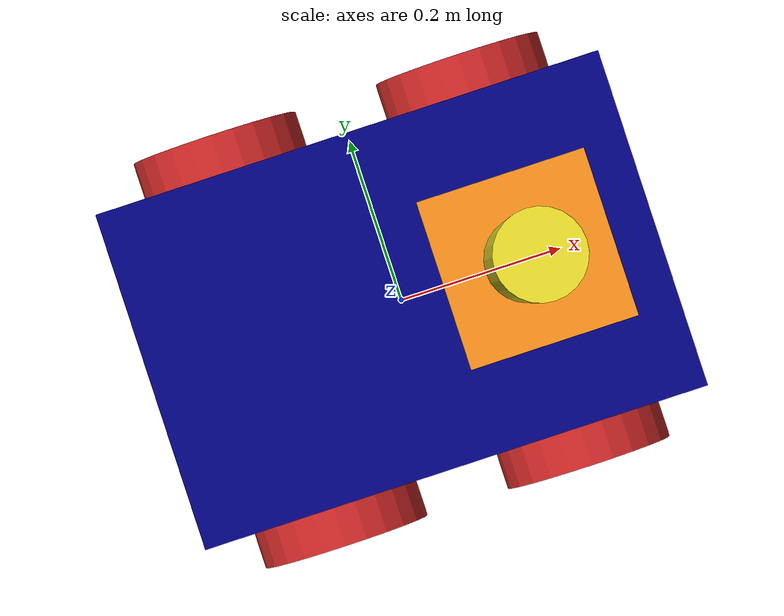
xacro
<?xml version="1.0"?>
<robot name="ma_robot" xmlns:xacro="http://www.ros.org/wiki/xacro">
    <xacro:include filename="common_properties.xacro" />
    <xacro:include filename="mobile_base.xacro" />
    <xacro:include filename="mobile_base.ros2_control.xacro" />
    <xacro:include filename="arm.xacro"/>
    <xacro:include filename="arm.ros2_control.xacro"/>

    <joint name="mobile_base_arm_joint" type="fixed">
        <parent link="base_link" />
        <child link="arm_base_link" />
        <origin xyz="${base_length / 4.0} 0 ${base_height}" rpy="0 0 0" />
    </joint>
</robot>

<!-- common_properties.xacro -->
<robot xmlns:xacro="http://www.ros.org/wiki/xacro">

    <material name="grey">
        <color rgba="0.5 0.5 0.5 1" />
    </material>

    <material name="blue">
        <color rgba="0 0 0.5 1" />
    </material>

    <material name="dark_green">
        <color rgba="0 0.4 0 1" />
    </material>

    <material name="light_green">
        <color rgba="0 0.6 0 1" />
    </material>

</robot>

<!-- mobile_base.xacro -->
<robot xmlns:xacro="http://www.ros.org/wiki/xacro">

    <xacro:property name="base_length" value="0.6" />
    <xacro:property name="base_width" value="0.4" />
    <xacro:property name="base_height" value="0.2" />
    <xacro:property name="wheel_radius" value="0.1" />
    <xacro:property name="wheel_length" value="0.05" />

    <link name="imu_frame"/>

    <joint name="imu_joint" type="fixed">
        <parent link="base_link"/>
        <child link="imu_frame"/>
        <origin xyz="0.0 0.0 0.08" rpy="0.0 0.0 0.0"/>
    </joint>

    <link name="base_link">
        <visual>
            <geometry>
                <box size="${base_length} ${base_width} ${base_height}" />
            </geometry>
            <origin xyz="0 0 ${base_height / 2.0}" rpy="0 0 0" />
            <material name="blue" />
        </visual>
        <collision>
            <geometry>
                <box size="${base_length} ${base_width} ${base_height}" />
            </geometry>
            <origin xyz="0 0 ${base_height / 2.0}" rpy="0 0 0" />
        </collision>
        <xacro:box_inertia m="100.0" l="${2*base_length}" w="${2*base_width}" h="${2*base_height}"
                           xyz="0 0 ${base_height / 2.0}" rpy="0 0 0" />
    </link>

    <xacro:macro name="wheel_link" params="prefix">
        <link name="${prefix}_wheel_link">
            <visual>
                <geometry>
                    <cylinder radius="${wheel_radius}" length="${wheel_length}" />
                </geometry>
                <origin xyz="0 0 0" rpy="${pi / 2.0} 0 0" />
                <material name="red" />
            </visual>
            <collision>
                <geometry>
                    <cylinder radius="${wheel_radius}" length="${wheel_length}" />
                </geometry>
                <origin xyz="0 0 0" rpy="${pi / 2.0} 0 0" />
            </collision>
            <xacro:cylinder_inertia m="10.0" r="${2*wheel_radius}" h="${2*wheel_length}"
                                    xyz="0 0 0" rpy="${pi / 2.0} 0 0" />
        </link>
    </xacro:macro>

    <xacro:wheel_link prefix="right_back" />
    <xacro:wheel_link prefix="left_back" />
    <xacro:wheel_link prefix="right_front" />
    <xacro:wheel_link prefix="left_front" />

    <link name="base_footprint">
    </link>

    <joint name="base_right_back_wheel_joint" type="continuous">
        <parent link="base_link" />
        <child link="right_back_wheel_link" />
        <origin xyz="${-base_length / 4.0} ${-(base_width + wheel_length) / 2.0} 0" rpy="0 0 0" />
        <axis xyz="0 1 0" />
    </joint>

    <joint name="base_right_front_wheel_joint" type="continuous">
        <parent link="base_link" />
        <child link="right_front_wheel_link" />
        <origin xyz="${(base_length) / 4.0} ${-(base_width + wheel_length) / 2.0} 0" rpy="0 0 0" />
        <axis xyz="0 1 0" />
    </joint>

     <joint name="base_left_back_wheel_joint" type="continuous">
        <parent link="base_link" />
        <child link="left_back_wheel_link" />
        <origin xyz="${-base_length / 4.0} ${(base_width + wheel_length) / 2.0} 0" rpy="0 0 0" />
        <axis xyz="0 1 0" />
    </joint>

    <joint name="base_left_front_wheel_joint" type="continuous">
        <parent link="base_link" />
        <child link="left_front_wheel_link" />
        <origin xyz="${base_length / 4.0} ${(base_width + wheel_length) / 2.0} 0" rpy="0 0 0" />
        <axis xyz="0 1 0" />
    </joint>

    <joint name="base_footprint_joint" type="fixed">
        <parent link="base_footprint" />
        <child link="base_link" />
        <origin xyz="0 0 ${wheel_radius}" rpy="0 0 0" />
    </joint>

</robot>

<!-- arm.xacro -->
<robot xmlns:xacro="http://www.ros.org/wiki/xacro">

    <xacro:property name="arm_base_length" value="0.2" />
    <xacro:property name="arm_base_width" value="0.2" />
    <xacro:property name="arm_base_height" value="0.01" />
    <xacro:property name="forearm_radius" value="0.05" />
    <xacro:property name="forearm_length" value="0.5" />

    <link name="arm_base_link">
        <visual>
            <geometry>
                <box size="${arm_base_length} ${arm_base_width} ${arm_base_height}" />
            </geometry>
            <origin xyz="0 0 ${arm_base_height / 2.0}" rpy="0 0 0" />
            <material name="orange" />
        </visual>
        <collision>
            <geometry>
                <box size="${arm_base_length} ${arm_base_width} ${arm_base_height}" />
            </geometry>
            <origin xyz="0 0 ${arm_base_height / 2.0}" rpy="0 0 0" />
        </collision>
        <xacro:box_inertia m="0.5" l="${2*arm_base_length}" w="${2*arm_base_width}" h="${2*arm_base_height}"
                           xyz="0 0 ${arm_base_height / 2.0}" rpy="0 0 0" />
    </link>

    <link name="forearm_link">
        <visual>
            <geometry>
                <cylinder radius="${forearm_radius}" length="${forearm_length}" />
            </geometry>
            <origin xyz="0 0 ${forearm_length/2.0}" rpy="0 0 0" />
            <material name="yellow" />
        </visual>
        <collision>
            <geometry>
                <cylinder radius="${forearm_radius}" length="${forearm_length}" />
            </geometry>
            <origin xyz="0 0 ${forearm_length/2.0}" rpy="0 0 0" />
        </collision>
        <xacro:cylinder_inertia m="0.3" r="${2*forearm_radius}" h="${2*forearm_length}"
                                xyz="0 0 ${forearm_length/2.0}" rpy="0 0 0" />
    </link>

    <joint name="arm_base_forearm_joint" type="revolute">
        <parent link="arm_base_link" />
        <child link="forearm_link" />
        <origin xyz="0 0 ${arm_base_height}" rpy="0 0 0" />
        <axis xyz="0 0 1" />
        <dynamics damping="1" friction="2"/>
        <limit lower="-3.14" upper="3.14" effort="500" velocity="1.0"/>
    </joint>

</robot>
